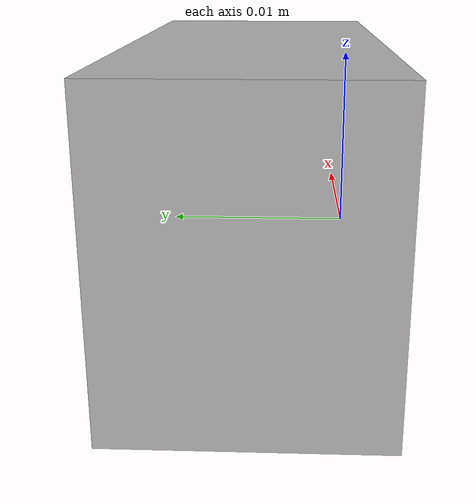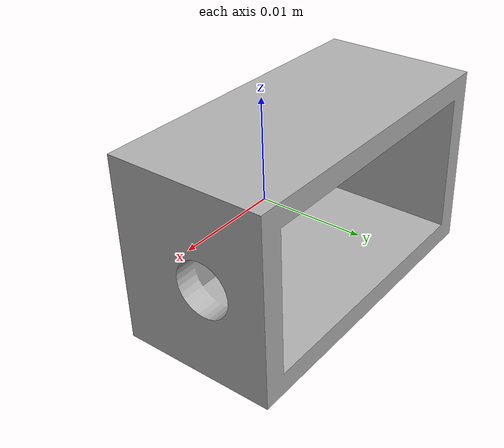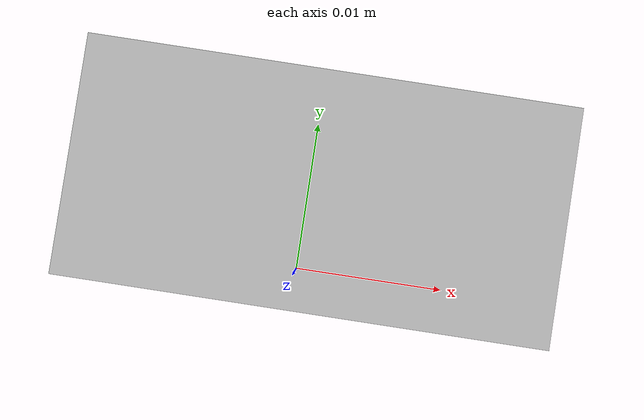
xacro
<?xml version="1.0" ?>
<robot name="hollowcuboid" xmlns:xacro="http://www.ros.org/wiki/xacro">

<xacro:include filename="$(find hollowcuboid_description)/urdf/materials.xacro" />
<xacro:include filename="$(find hollowcuboid_description)/urdf/hollowcuboid.trans" />
<xacro:include filename="$(find hollowcuboid_description)/urdf/hollowcuboid.gazebo" />
<link name="base_link">
  <inertial>
    <origin rpy="0 0 0" xyz="0.004891358750666235 0.037135247519061505 0.020839331427533428"/>
    <mass value="23.38999157629203"/>
    <inertia ixx="0.133272" ixy="0.001081" ixz="-1.9e-05" iyy="0.303851" iyz="-4e-06" izz="0.261336"/>
  </inertial>
  <visual>
    <origin rpy="0 0 0" xyz="0 0 0"/>
    <geometry>
      <mesh filename="package://hollowcuboid_description/meshes/base_link.stl" scale="0.001 0.001 0.001"/>
    </geometry>
    <material name="silver"/>
  </visual>
  <collision>
    <origin rpy="0 0 0" xyz="0 0 0"/>
    <geometry>
      <mesh filename="package://hollowcuboid_description/meshes/base_link.stl" scale="0.001 0.001 0.001"/>
    </geometry>
  </collision>
</link>

</robot>

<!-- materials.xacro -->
<robot name="hollowcuboid" xmlns:xacro="http://www.ros.org/wiki/xacro" >

<material name="silver">
  <color rgba="0.700 0.700 0.700 1.000"/>
</material>

</robot>

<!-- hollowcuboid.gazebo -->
<robot name="hollowcuboid" xmlns:xacro="http://www.ros.org/wiki/xacro" >

<xacro:property name="body_color" value="Gazebo/Silver" />

<gazebo>
  <plugin filename="libgazebo_ros_control.so" name="control"/>
</gazebo>
<gazebo reference="base_link">
  <material>${body_color}</material>
  <mu1>0.2</mu1>
  <mu2>0.2</mu2>
  <selfCollide>true</selfCollide>
  <gravity>true</gravity>
</gazebo>

</robot>
